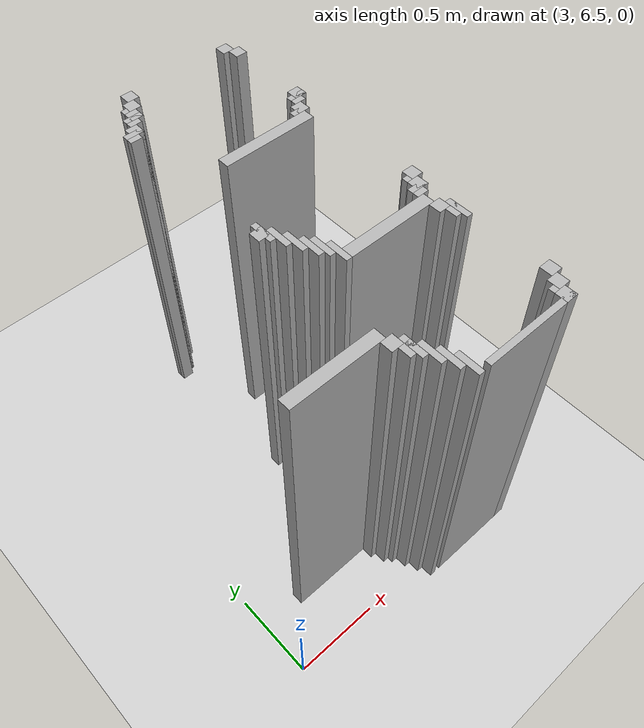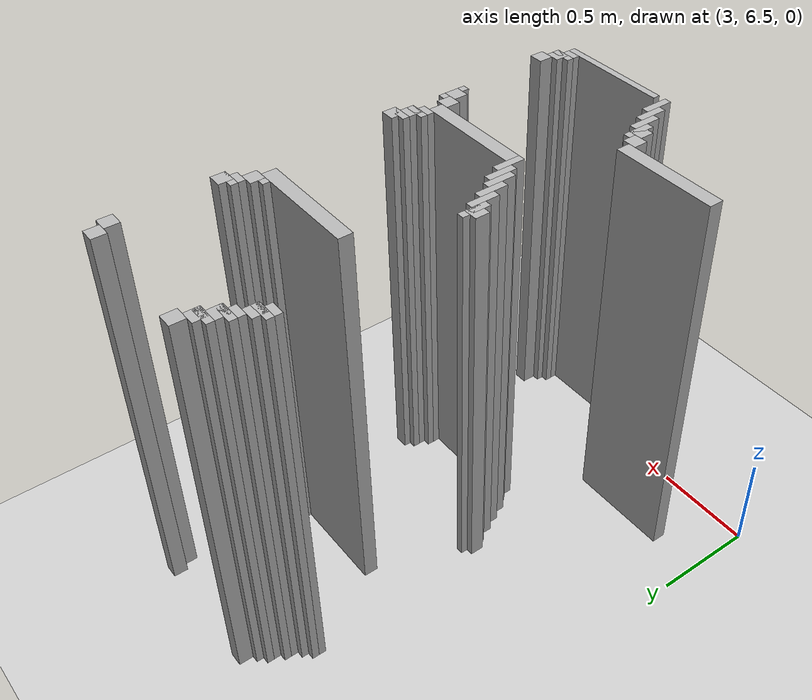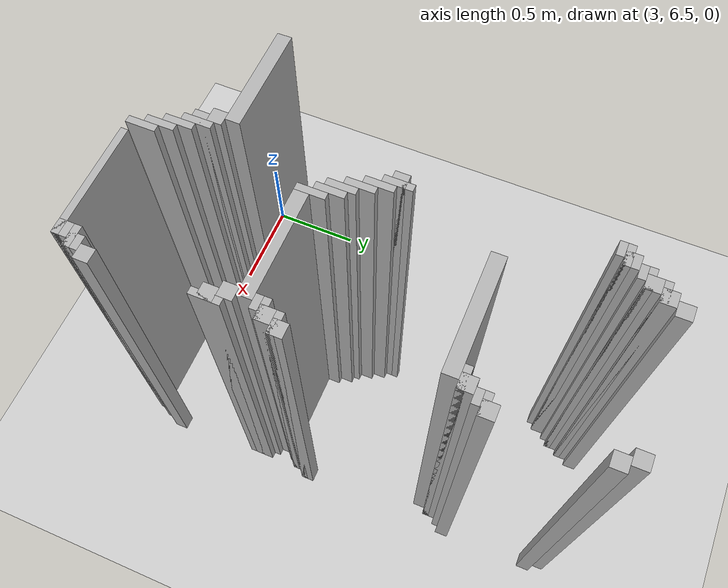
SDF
<sdf version="1.6">
 <world name="slam_world">
  <model name="ground_plane">
   <static>true</static>
   <link name="link">
    <collision name="collision">
     <geometry><plane><normal>0 0 1</normal><size>100 100</size></plane></geometry>
    </collision>
    <visual name="visual">
     <geometry><plane><normal>0 0 1</normal><size>100 100</size></plane></geometry>
     <material>
      <ambient>0.8 0.8 0.8 1</ambient>
      <diffuse>0.8 0.8 0.8 1</diffuse>
      <specular>0.8 0.8 0.8 1</specular>
     </material>
    </visual>
   </link>
  </model>
  <model name="wall_2862">
   <static>true</static>
   <pose>3.897911832946636 8.805104408352667 1.0 0 0 0</pose>
   <link name="link">
    <collision name="collision">
     <geometry><box><size>0.06960556844547564 0.06960556844547564 2.0</size></box></geometry>
    </collision>
    <visual name="visual">
     <geometry><box><size>0.06960556844547564 0.06960556844547564 2.0</size></box></geometry>
     <material><ambient>0.5 0.5 0.5 1</ambient><diffuse>0.7 0.7 0.7 1</diffuse></material>
    </visual>
   </link>
  </model>
  <model name="wall_2863">
   <static>true</static>
   <pose>4.524361948955916 8.805104408352667 1.0 0 0 0</pose>
   <link name="link">
    <collision name="collision">
     <geometry><box><size>0.06960556844547564 0.06960556844547564 2.0</size></box></geometry>
    </collision>
    <visual name="visual">
     <geometry><box><size>0.06960556844547564 0.06960556844547564 2.0</size></box></geometry>
     <material><ambient>0.5 0.5 0.5 1</ambient><diffuse>0.7 0.7 0.7 1</diffuse></material>
    </visual>
   </link>
  </model>
  <model name="wall_2877">
   <static>true</static>
   <pose>3.863109048723898 8.735498839907192 1.0 0 0 0</pose>
   <link name="link">
    <collision name="collision">
     <geometry><box><size>0.06960556844547564 0.06960556844547564 2.0</size></box></geometry>
    </collision>
    <visual name="visual">
     <geometry><box><size>0.06960556844547564 0.06960556844547564 2.0</size></box></geometry>
     <material><ambient>0.5 0.5 0.5 1</ambient><diffuse>0.7 0.7 0.7 1</diffuse></material>
    </visual>
   </link>
  </model>
  <model name="wall_2878">
   <static>true</static>
   <pose>4.559164733178654 8.735498839907192 1.0 0 0 0</pose>
   <link name="link">
    <collision name="collision">
     <geometry><box><size>0.06960556844547564 0.06960556844547564 2.0</size></box></geometry>
    </collision>
    <visual name="visual">
     <geometry><box><size>0.06960556844547564 0.06960556844547564 2.0</size></box></geometry>
     <material><ambient>0.5 0.5 0.5 1</ambient><diffuse>0.7 0.7 0.7 1</diffuse></material>
    </visual>
   </link>
  </model>
  <model name="wall_2892">
   <static>true</static>
   <pose>3.845707656612529 8.718097447795824 1.0 0 0 0</pose>
   <link name="link">
    <collision name="collision">
     <geometry><box><size>0.10440835266821345 0.03480278422273782 2.0</size></box></geometry>
    </collision>
    <visual name="visual">
     <geometry><box><size>0.10440835266821345 0.03480278422273782 2.0</size></box></geometry>
     <material><ambient>0.5 0.5 0.5 1</ambient><diffuse>0.7 0.7 0.7 1</diffuse></material>
    </visual>
   </link>
  </model>
  <model name="wall_2906">
   <static>true</static>
   <pose>3.82830626450116 8.665893271461716 1.0 0 0 0</pose>
   <link name="link">
    <collision name="collision">
     <geometry><box><size>0.06960556844547564 0.06960556844547564 2.0</size></box></geometry>
    </collision>
    <visual name="visual">
     <geometry><box><size>0.06960556844547564 0.06960556844547564 2.0</size></box></geometry>
     <material><ambient>0.5 0.5 0.5 1</ambient><diffuse>0.7 0.7 0.7 1</diffuse></material>
    </visual>
   </link>
  </model>
  <model name="wall_2918">
   <static>true</static>
   <pose>3.810904872389791 8.648491879350347 1.0 0 0 0</pose>
   <link name="link">
    <collision name="collision">
     <geometry><box><size>0.10440835266821345 0.03480278422273782 2.0</size></box></geometry>
    </collision>
    <visual name="visual">
     <geometry><box><size>0.10440835266821345 0.03480278422273782 2.0</size></box></geometry>
     <material><ambient>0.5 0.5 0.5 1</ambient><diffuse>0.7 0.7 0.7 1</diffuse></material>
    </visual>
   </link>
  </model>
  <model name="wall_2930">
   <static>true</static>
   <pose>3.793503480278422 8.61368909512761 1.0 0 0 0</pose>
   <link name="link">
    <collision name="collision">
     <geometry><box><size>0.06960556844547564 0.03480278422273782 2.0</size></box></geometry>
    </collision>
    <visual name="visual">
     <geometry><box><size>0.06960556844547564 0.03480278422273782 2.0</size></box></geometry>
     <material><ambient>0.5 0.5 0.5 1</ambient><diffuse>0.7 0.7 0.7 1</diffuse></material>
    </visual>
   </link>
  </model>
  <model name="wall_2939">
   <static>true</static>
   <pose>3.7587006960556844 8.561484918793504 1.0 0 0 0</pose>
   <link name="link">
    <collision name="collision">
     <geometry><box><size>0.06960556844547564 0.06960556844547564 2.0</size></box></geometry>
    </collision>
    <visual name="visual">
     <geometry><box><size>0.06960556844547564 0.06960556844547564 2.0</size></box></geometry>
     <material><ambient>0.5 0.5 0.5 1</ambient><diffuse>0.7 0.7 0.7 1</diffuse></material>
    </visual>
   </link>
  </model>
  <model name="wall_2954">
   <static>true</static>
   <pose>3.741299303944315 8.544083526682135 1.0 0 0 0</pose>
   <link name="link">
    <collision name="collision">
     <geometry><box><size>0.10440835266821345 0.03480278422273782 2.0</size></box></geometry>
    </collision>
    <visual name="visual">
     <geometry><box><size>0.10440835266821345 0.03480278422273782 2.0</size></box></geometry>
     <material><ambient>0.5 0.5 0.5 1</ambient><diffuse>0.7 0.7 0.7 1</diffuse></material>
    </visual>
   </link>
  </model>
  <model name="wall_2967">
   <static>true</static>
   <pose>3.7238979118329465 8.509280742459396 1.0 0 0 0</pose>
   <link name="link">
    <collision name="collision">
     <geometry><box><size>0.06960556844547564 0.03480278422273782 2.0</size></box></geometry>
    </collision>
    <visual name="visual">
     <geometry><box><size>0.06960556844547564 0.03480278422273782 2.0</size></box></geometry>
     <material><ambient>0.5 0.5 0.5 1</ambient><diffuse>0.7 0.7 0.7 1</diffuse></material>
    </visual>
   </link>
  </model>
  <model name="wall_3040">
   <static>true</static>
   <pose>4.559164733178654 8.248259860788863 1.0 0 0 0</pose>
   <link name="link">
    <collision name="collision">
     <geometry><box><size>0.06960556844547564 0.06960556844547564 2.0</size></box></geometry>
    </collision>
    <visual name="visual">
     <geometry><box><size>0.06960556844547564 0.06960556844547564 2.0</size></box></geometry>
     <material><ambient>0.5 0.5 0.5 1</ambient><diffuse>0.7 0.7 0.7 1</diffuse></material>
    </visual>
   </link>
  </model>
  <model name="wall_3052">
   <static>true</static>
   <pose>4.541763341067285 8.230858468677495 1.0 0 0 0</pose>
   <link name="link">
    <collision name="collision">
     <geometry><box><size>0.10440835266821345 0.03480278422273782 2.0</size></box></geometry>
    </collision>
    <visual name="visual">
     <geometry><box><size>0.10440835266821345 0.03480278422273782 2.0</size></box></geometry>
     <material><ambient>0.5 0.5 0.5 1</ambient><diffuse>0.7 0.7 0.7 1</diffuse></material>
    </visual>
   </link>
  </model>
  <model name="wall_3064">
   <static>true</static>
   <pose>4.524361948955916 8.196055684454755 1.0 0 0 0</pose>
   <link name="link">
    <collision name="collision">
     <geometry><box><size>0.06960556844547564 0.03480278422273782 2.0</size></box></geometry>
    </collision>
    <visual name="visual">
     <geometry><box><size>0.06960556844547564 0.03480278422273782 2.0</size></box></geometry>
     <material><ambient>0.5 0.5 0.5 1</ambient><diffuse>0.7 0.7 0.7 1</diffuse></material>
    </visual>
   </link>
  </model>
  <model name="wall_3074">
   <static>true</static>
   <pose>4.489559164733178 8.14385150812065 1.0 0 0 0</pose>
   <link name="link">
    <collision name="collision">
     <geometry><box><size>0.06960556844547564 0.06960556844547564 2.0</size></box></geometry>
    </collision>
    <visual name="visual">
     <geometry><box><size>0.06960556844547564 0.06960556844547564 2.0</size></box></geometry>
     <material><ambient>0.5 0.5 0.5 1</ambient><diffuse>0.7 0.7 0.7 1</diffuse></material>
    </visual>
   </link>
  </model>
  <model name="wall_3086">
   <static>true</static>
   <pose>4.472157772621809 8.12645011600928 1.0 0 0 0</pose>
   <link name="link">
    <collision name="collision">
     <geometry><box><size>0.10440835266821345 0.03480278422273782 2.0</size></box></geometry>
    </collision>
    <visual name="visual">
     <geometry><box><size>0.10440835266821345 0.03480278422273782 2.0</size></box></geometry>
     <material><ambient>0.5 0.5 0.5 1</ambient><diffuse>0.7 0.7 0.7 1</diffuse></material>
    </visual>
   </link>
  </model>
  <model name="wall_3099">
   <static>true</static>
   <pose>4.211136890951276 8.074245939675174 1.0 0 0 0</pose>
   <link name="link">
    <collision name="collision">
     <geometry><box><size>0.5568445475638051 0.06960556844547564 2.0</size></box></geometry>
    </collision>
    <visual name="visual">
     <geometry><box><size>0.5568445475638051 0.06960556844547564 2.0</size></box></geometry>
     <material><ambient>0.5 0.5 0.5 1</ambient><diffuse>0.7 0.7 0.7 1</diffuse></material>
    </visual>
   </link>
  </model>
  <model name="wall_3195">
   <static>true</static>
   <pose>3.776102088167053 7.587006960556844 1.0 0 0 0</pose>
   <link name="link">
    <collision name="collision">
     <geometry><box><size>0.03480278422273782 0.13921113689095127 2.0</size></box></geometry>
    </collision>
    <visual name="visual">
     <geometry><box><size>0.03480278422273782 0.13921113689095127 2.0</size></box></geometry>
     <material><ambient>0.5 0.5 0.5 1</ambient><diffuse>0.7 0.7 0.7 1</diffuse></material>
    </visual>
   </link>
  </model>
  <model name="wall_3207">
   <static>true</static>
   <pose>3.7587006960556844 7.587006960556844 1.0 0 0 0</pose>
   <link name="link">
    <collision name="collision">
     <geometry><box><size>0.06960556844547564 0.06960556844547564 2.0</size></box></geometry>
    </collision>
    <visual name="visual">
     <geometry><box><size>0.06960556844547564 0.06960556844547564 2.0</size></box></geometry>
     <material><ambient>0.5 0.5 0.5 1</ambient><diffuse>0.7 0.7 0.7 1</diffuse></material>
    </visual>
   </link>
  </model>
  <model name="wall_3220">
   <static>true</static>
   <pose>3.810904872389791 7.517401392111369 1.0 0 0 0</pose>
   <link name="link">
    <collision name="collision">
     <geometry><box><size>0.03480278422273782 0.13921113689095127 2.0</size></box></geometry>
    </collision>
    <visual name="visual">
     <geometry><box><size>0.03480278422273782 0.13921113689095127 2.0</size></box></geometry>
     <material><ambient>0.5 0.5 0.5 1</ambient><diffuse>0.7 0.7 0.7 1</diffuse></material>
    </visual>
   </link>
  </model>
  <model name="wall_3242">
   <static>true</static>
   <pose>3.845707656612529 7.447795823665893 1.0 0 0 0</pose>
   <link name="link">
    <collision name="collision">
     <geometry><box><size>0.03480278422273782 0.13921113689095127 2.0</size></box></geometry>
    </collision>
    <visual name="visual">
     <geometry><box><size>0.03480278422273782 0.13921113689095127 2.0</size></box></geometry>
     <material><ambient>0.5 0.5 0.5 1</ambient><diffuse>0.7 0.7 0.7 1</diffuse></material>
    </visual>
   </link>
  </model>
  <model name="wall_3255">
   <static>true</static>
   <pose>3.8805104408352666 7.378190255220417 1.0 0 0 0</pose>
   <link name="link">
    <collision name="collision">
     <geometry><box><size>0.03480278422273782 0.13921113689095127 2.0</size></box></geometry>
    </collision>
    <visual name="visual">
     <geometry><box><size>0.03480278422273782 0.13921113689095127 2.0</size></box></geometry>
     <material><ambient>0.5 0.5 0.5 1</ambient><diffuse>0.7 0.7 0.7 1</diffuse></material>
    </visual>
   </link>
  </model>
  <model name="wall_3256">
   <static>true</static>
   <pose>4.559164733178654 7.412993039443156 1.0 0 0 0</pose>
   <link name="link">
    <collision name="collision">
     <geometry><box><size>0.06960556844547564 0.06960556844547564 2.0</size></box></geometry>
    </collision>
    <visual name="visual">
     <geometry><box><size>0.06960556844547564 0.06960556844547564 2.0</size></box></geometry>
     <material><ambient>0.5 0.5 0.5 1</ambient><diffuse>0.7 0.7 0.7 1</diffuse></material>
    </visual>
   </link>
  </model>
  <model name="wall_3268">
   <static>true</static>
   <pose>3.9153132250580045 7.34338747099768 1.0 0 0 0</pose>
   <link name="link">
    <collision name="collision">
     <geometry><box><size>0.03480278422273782 0.13921113689095127 2.0</size></box></geometry>
    </collision>
    <visual name="visual">
     <geometry><box><size>0.03480278422273782 0.13921113689095127 2.0</size></box></geometry>
     <material><ambient>0.5 0.5 0.5 1</ambient><diffuse>0.7 0.7 0.7 1</diffuse></material>
    </visual>
   </link>
  </model>
  <model name="wall_3269">
   <static>true</static>
   <pose>4.541763341067285 7.395591647331786 1.0 0 0 0</pose>
   <link name="link">
    <collision name="collision">
     <geometry><box><size>0.10440835266821345 0.03480278422273782 2.0</size></box></geometry>
    </collision>
    <visual name="visual">
     <geometry><box><size>0.10440835266821345 0.03480278422273782 2.0</size></box></geometry>
     <material><ambient>0.5 0.5 0.5 1</ambient><diffuse>0.7 0.7 0.7 1</diffuse></material>
    </visual>
   </link>
  </model>
  <model name="wall_3280">
   <static>true</static>
   <pose>4.524361948955916 7.34338747099768 1.0 0 0 0</pose>
   <link name="link">
    <collision name="collision">
     <geometry><box><size>0.06960556844547564 0.06960556844547564 2.0</size></box></geometry>
    </collision>
    <visual name="visual">
     <geometry><box><size>0.06960556844547564 0.06960556844547564 2.0</size></box></geometry>
     <material><ambient>0.5 0.5 0.5 1</ambient><diffuse>0.7 0.7 0.7 1</diffuse></material>
    </visual>
   </link>
  </model>
  <model name="wall_3288">
   <static>true</static>
   <pose>3.9501160092807424 7.273781902552204 1.0 0 0 0</pose>
   <link name="link">
    <collision name="collision">
     <geometry><box><size>0.03480278422273782 0.13921113689095127 2.0</size></box></geometry>
    </collision>
    <visual name="visual">
     <geometry><box><size>0.03480278422273782 0.13921113689095127 2.0</size></box></geometry>
     <material><ambient>0.5 0.5 0.5 1</ambient><diffuse>0.7 0.7 0.7 1</diffuse></material>
    </visual>
   </link>
  </model>
  <model name="wall_3289">
   <static>true</static>
   <pose>4.506960556844548 7.32598607888631 1.0 0 0 0</pose>
   <link name="link">
    <collision name="collision">
     <geometry><box><size>0.10440835266821345 0.03480278422273782 2.0</size></box></geometry>
    </collision>
    <visual name="visual">
     <geometry><box><size>0.10440835266821345 0.03480278422273782 2.0</size></box></geometry>
     <material><ambient>0.5 0.5 0.5 1</ambient><diffuse>0.7 0.7 0.7 1</diffuse></material>
    </visual>
   </link>
  </model>
  <model name="wall_3300">
   <static>true</static>
   <pose>4.489559164733178 7.291183294663573 1.0 0 0 0</pose>
   <link name="link">
    <collision name="collision">
     <geometry><box><size>0.06960556844547564 0.03480278422273782 2.0</size></box></geometry>
    </collision>
    <visual name="visual">
     <geometry><box><size>0.06960556844547564 0.03480278422273782 2.0</size></box></geometry>
     <material><ambient>0.5 0.5 0.5 1</ambient><diffuse>0.7 0.7 0.7 1</diffuse></material>
    </visual>
   </link>
  </model>
  <model name="wall_3308">
   <static>true</static>
   <pose>4.228538283062645 7.238979118329466 1.0 0 0 0</pose>
   <link name="link">
    <collision name="collision">
     <geometry><box><size>0.5220417633410672 0.06960556844547564 2.0</size></box></geometry>
    </collision>
    <visual name="visual">
     <geometry><box><size>0.5220417633410672 0.06960556844547564 2.0</size></box></geometry>
     <material><ambient>0.5 0.5 0.5 1</ambient><diffuse>0.7 0.7 0.7 1</diffuse></material>
    </visual>
   </link>
  </model>
  <model name="wall_3321">
   <static>true</static>
   <pose>4.489559164733178 7.16937354988399 1.0 0 0 0</pose>
   <link name="link">
    <collision name="collision">
     <geometry><box><size>0.06960556844547564 0.06960556844547564 2.0</size></box></geometry>
    </collision>
    <visual name="visual">
     <geometry><box><size>0.06960556844547564 0.06960556844547564 2.0</size></box></geometry>
     <material><ambient>0.5 0.5 0.5 1</ambient><diffuse>0.7 0.7 0.7 1</diffuse></material>
    </visual>
   </link>
  </model>
  <model name="wall_3333">
   <static>true</static>
   <pose>4.541763341067285 7.099767981438514 1.0 0 0 0</pose>
   <link name="link">
    <collision name="collision">
     <geometry><box><size>0.03480278422273782 0.13921113689095127 2.0</size></box></geometry>
    </collision>
    <visual name="visual">
     <geometry><box><size>0.03480278422273782 0.13921113689095127 2.0</size></box></geometry>
     <material><ambient>0.5 0.5 0.5 1</ambient><diffuse>0.7 0.7 0.7 1</diffuse></material>
    </visual>
   </link>
  </model>
  <model name="wall_3345">
   <static>true</static>
   <pose>4.524361948955916 7.099767981438514 1.0 0 0 0</pose>
   <link name="link">
    <collision name="collision">
     <geometry><box><size>0.06960556844547564 0.06960556844547564 2.0</size></box></geometry>
    </collision>
    <visual name="visual">
     <geometry><box><size>0.06960556844547564 0.06960556844547564 2.0</size></box></geometry>
     <material><ambient>0.5 0.5 0.5 1</ambient><diffuse>0.7 0.7 0.7 1</diffuse></material>
    </visual>
   </link>
  </model>
  <model name="wall_3420">
   <static>true</static>
   <pose>3.4976798143851506 6.821345707656612 1.0 0 0 0</pose>
   <link name="link">
    <collision name="collision">
     <geometry><box><size>0.5220417633410672 0.06960556844547564 2.0</size></box></geometry>
    </collision>
    <visual name="visual">
     <geometry><box><size>0.5220417633410672 0.06960556844547564 2.0</size></box></geometry>
     <material><ambient>0.5 0.5 0.5 1</ambient><diffuse>0.7 0.7 0.7 1</diffuse></material>
    </visual>
   </link>
  </model>
  <model name="wall_3441">
   <static>true</static>
   <pose>3.7587006960556844 6.751740139211137 1.0 0 0 0</pose>
   <link name="link">
    <collision name="collision">
     <geometry><box><size>0.06960556844547564 0.06960556844547564 2.0</size></box></geometry>
    </collision>
    <visual name="visual">
     <geometry><box><size>0.06960556844547564 0.06960556844547564 2.0</size></box></geometry>
     <material><ambient>0.5 0.5 0.5 1</ambient><diffuse>0.7 0.7 0.7 1</diffuse></material>
    </visual>
   </link>
  </model>
  <model name="wall_3461">
   <static>true</static>
   <pose>3.810904872389791 6.682134570765661 1.0 0 0 0</pose>
   <link name="link">
    <collision name="collision">
     <geometry><box><size>0.03480278422273782 0.13921113689095127 2.0</size></box></geometry>
    </collision>
    <visual name="visual">
     <geometry><box><size>0.03480278422273782 0.13921113689095127 2.0</size></box></geometry>
     <material><ambient>0.5 0.5 0.5 1</ambient><diffuse>0.7 0.7 0.7 1</diffuse></material>
    </visual>
   </link>
  </model>
  <model name="wall_3481">
   <static>true</static>
   <pose>3.793503480278422 6.682134570765661 1.0 0 0 0</pose>
   <link name="link">
    <collision name="collision">
     <geometry><box><size>0.06960556844547564 0.06960556844547564 2.0</size></box></geometry>
    </collision>
    <visual name="visual">
     <geometry><box><size>0.06960556844547564 0.06960556844547564 2.0</size></box></geometry>
     <material><ambient>0.5 0.5 0.5 1</ambient><diffuse>0.7 0.7 0.7 1</diffuse></material>
    </visual>
   </link>
  </model>
  <model name="wall_3501">
   <static>true</static>
   <pose>3.845707656612529 6.612529002320185 1.0 0 0 0</pose>
   <link name="link">
    <collision name="collision">
     <geometry><box><size>0.03480278422273782 0.13921113689095127 2.0</size></box></geometry>
    </collision>
    <visual name="visual">
     <geometry><box><size>0.03480278422273782 0.13921113689095127 2.0</size></box></geometry>
     <material><ambient>0.5 0.5 0.5 1</ambient><diffuse>0.7 0.7 0.7 1</diffuse></material>
    </visual>
   </link>
  </model>
  <model name="wall_3531">
   <static>true</static>
   <pose>3.8805104408352666 6.5429234338747095 1.0 0 0 0</pose>
   <link name="link">
    <collision name="collision">
     <geometry><box><size>0.03480278422273782 0.13921113689095127 2.0</size></box></geometry>
    </collision>
    <visual name="visual">
     <geometry><box><size>0.03480278422273782 0.13921113689095127 2.0</size></box></geometry>
     <material><ambient>0.5 0.5 0.5 1</ambient><diffuse>0.7 0.7 0.7 1</diffuse></material>
    </visual>
   </link>
  </model>
  <model name="wall_3532">
   <static>true</static>
   <pose>4.559164733178654 6.577726218097448 1.0 0 0 0</pose>
   <link name="link">
    <collision name="collision">
     <geometry><box><size>0.06960556844547564 0.06960556844547564 2.0</size></box></geometry>
    </collision>
    <visual name="visual">
     <geometry><box><size>0.06960556844547564 0.06960556844547564 2.0</size></box></geometry>
     <material><ambient>0.5 0.5 0.5 1</ambient><diffuse>0.7 0.7 0.7 1</diffuse></material>
    </visual>
   </link>
  </model>
  <model name="wall_3551">
   <static>true</static>
   <pose>3.9153132250580045 6.473317865429234 1.0 0 0 0</pose>
   <link name="link">
    <collision name="collision">
     <geometry><box><size>0.03480278422273782 0.13921113689095127 2.0</size></box></geometry>
    </collision>
    <visual name="visual">
     <geometry><box><size>0.03480278422273782 0.13921113689095127 2.0</size></box></geometry>
     <material><ambient>0.5 0.5 0.5 1</ambient><diffuse>0.7 0.7 0.7 1</diffuse></material>
    </visual>
   </link>
  </model>
  <model name="wall_3552">
   <static>true</static>
   <pose>4.524361948955916 6.508120649651972 1.0 0 0 0</pose>
   <link name="link">
    <collision name="collision">
     <geometry><box><size>0.06960556844547564 0.06960556844547564 2.0</size></box></geometry>
    </collision>
    <visual name="visual">
     <geometry><box><size>0.06960556844547564 0.06960556844547564 2.0</size></box></geometry>
     <material><ambient>0.5 0.5 0.5 1</ambient><diffuse>0.7 0.7 0.7 1</diffuse></material>
    </visual>
   </link>
  </model>
  <model name="wall_3572">
   <static>true</static>
   <pose>4.506960556844548 6.490719257540603 1.0 0 0 0</pose>
   <link name="link">
    <collision name="collision">
     <geometry><box><size>0.10440835266821345 0.03480278422273782 2.0</size></box></geometry>
    </collision>
    <visual name="visual">
     <geometry><box><size>0.10440835266821345 0.03480278422273782 2.0</size></box></geometry>
     <material><ambient>0.5 0.5 0.5 1</ambient><diffuse>0.7 0.7 0.7 1</diffuse></material>
    </visual>
   </link>
  </model>
  <model name="wall_3589">
   <static>true</static>
   <pose>4.489559164733178 6.438515081206496 1.0 0 0 0</pose>
   <link name="link">
    <collision name="collision">
     <geometry><box><size>0.06960556844547564 0.06960556844547564 2.0</size></box></geometry>
    </collision>
    <visual name="visual">
     <geometry><box><size>0.06960556844547564 0.06960556844547564 2.0</size></box></geometry>
     <material><ambient>0.5 0.5 0.5 1</ambient><diffuse>0.7 0.7 0.7 1</diffuse></material>
    </visual>
   </link>
  </model>
  <model name="wall_3600">
   <static>true</static>
   <pose>4.2459396751740135 6.421113689095128 1.0 0 0 0</pose>
   <link name="link">
    <collision name="collision">
     <geometry><box><size>0.5568445475638051 0.03480278422273782 2.0</size></box></geometry>
    </collision>
    <visual name="visual">
     <geometry><box><size>0.5568445475638051 0.03480278422273782 2.0</size></box></geometry>
     <material><ambient>0.5 0.5 0.5 1</ambient><diffuse>0.7 0.7 0.7 1</diffuse></material>
    </visual>
   </link>
  </model>
 </world>
</sdf>
